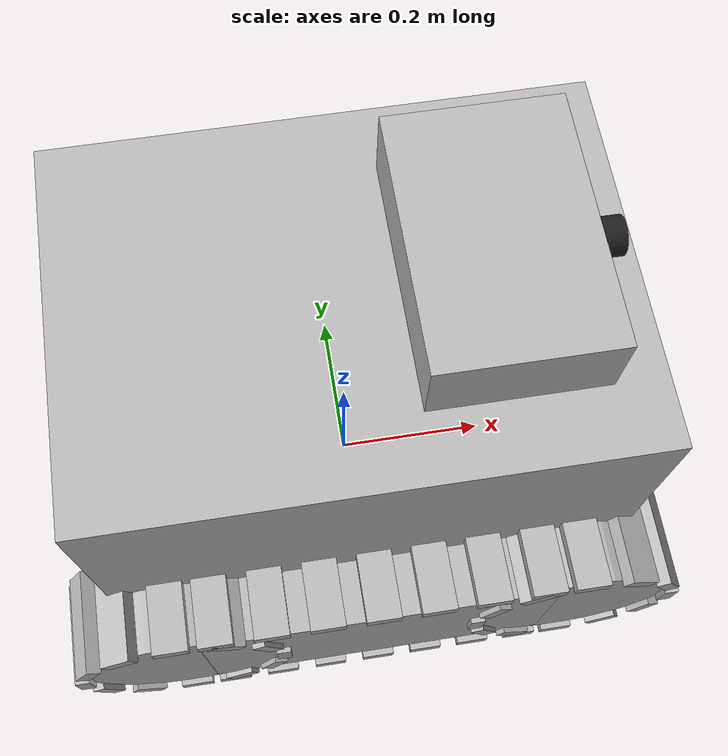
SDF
<?xml version="1.0" ?>
<sdf version="1.6">
  <model name="rover_core">

    <static>0</static>

    <include>
      <uri>model://rover_front_camera</uri>
      <pose>0.26 0 0.52 0 0 0</pose>
    </include>
    <joint name="front_camera_mount" type="fixed">
      <parent>base_link</parent>
      <child>rover_front_camera::base_link</child>
    </joint>

    <!-- ================= CHASSIS ================= -->
    <link name="base_link">
      <inertial>
        <pose>0 0 0.28 0 0 0</pose>
        <mass>54.0</mass>
        <inertia>
          <ixx>2.011</ixx>
          <ixy>0</ixy>
          <ixz>0</ixz>
          <iyy>2.754</iyy>
          <iyz>0</iyz>
          <izz>3.177</izz>
        </inertia>
      </inertial>

      <collision name="body_collision">
        <pose>0 0 0.33 0 0 0</pose>
        <geometry>
          <box>
            <size>0.66 0.58 0.30</size>
          </box>
        </geometry>
      </collision>

      <!-- lower drive housing between the tracks -->
      <visual name="housing_visual">
        <pose>0 0 0.14 0 0 0</pose>
        <geometry>
          <box>
            <size>0.58 0.36 0.12</size>
          </box>
        </geometry>
        <material>
          <script>
            <uri>model://rover_core/materials/scripts/rover.material</uri>
            <name>Rover/Housing</name>
          </script>
        </material>
      </visual>

      <!-- main upper body -->
      <visual name="body_visual">
        <pose>0 0 0.34 0 0 0</pose>
        <geometry>
          <box>
            <size>0.64 0.46 0.28</size>
          </box>
        </geometry>
        <material>
          <script>
            <uri>model://rover_core/materials/scripts/rover.material</uri>
            <name>Rover/Body</name>
          </script>
        </material>
      </visual>

      <!-- sensor head (cameras + RTK), at the front top -->
      <visual name="head_visual">
        <pose>0.16 0 0.52 0 0 0</pose>
        <geometry>
          <box>
            <size>0.20 0.30 0.10</size>
          </box>
        </geometry>
        <material>
          <script>
            <uri>model://rover_core/materials/scripts/rover.material</uri>
            <name>Rover/Head</name>
          </script>
        </material>
      </visual>

      <visual name="left_belt">
        <pose>0 0.2500 0.1200 0 0 0</pose>
        <geometry>
          <box>
            <size>0.4400 0.1120 0.2100</size>
          </box>
        </geometry>
        <material>
          <script>
            <uri>model://rover_core/materials/scripts/rover.material</uri>
            <name>Rover/Track</name>
          </script>
        </material>
      </visual>
      <visual name="left_lug_bot_00">
        <pose>-0.1979 0.2500 -0.0060 0 0 0</pose>
        <geometry>
          <box>
            <size>0.0420 0.1250 0.0180</size>
          </box>
        </geometry>
        <material>
          <script>
            <uri>model://rover_core/materials/scripts/rover.material</uri>
            <name>Rover/Lug</name>
          </script>
        </material>
      </visual>
      <visual name="left_lug_top_00">
        <pose>-0.1979 0.2500 0.2460 0 0 0</pose>
        <geometry>
          <box>
            <size>0.0420 0.1250 0.0180</size>
          </box>
        </geometry>
        <material>
          <script>
            <uri>model://rover_core/materials/scripts/rover.material</uri>
            <name>Rover/Lug</name>
          </script>
        </material>
      </visual>
      <visual name="left_lug_bot_01">
        <pose>-0.1319 0.2500 -0.0060 0 0 0</pose>
        <geometry>
          <box>
            <size>0.0420 0.1250 0.0180</size>
          </box>
        </geometry>
        <material>
          <script>
            <uri>model://rover_core/materials/scripts/rover.material</uri>
            <name>Rover/Lug</name>
          </script>
        </material>
      </visual>
      <visual name="left_lug_top_01">
        <pose>-0.1319 0.2500 0.2460 0 0 0</pose>
        <geometry>
          <box>
            <size>0.0420 0.1250 0.0180</size>
          </box>
        </geometry>
        <material>
          <script>
            <uri>model://rover_core/materials/scripts/rover.material</uri>
            <name>Rover/Lug</name>
          </script>
        </material>
      </visual>
      <visual name="left_lug_bot_02">
        <pose>-0.0660 0.2500 -0.0060 0 0 0</pose>
        <geometry>
          <box>
            <size>0.0420 0.1250 0.0180</size>
          </box>
        </geometry>
        <material>
          <script>
            <uri>model://rover_core/materials/scripts/rover.material</uri>
            <name>Rover/Lug</name>
          </script>
        </material>
      </visual>
      <visual name="left_lug_top_02">
        <pose>-0.0660 0.2500 0.2460 0 0 0</pose>
        <geometry>
          <box>
            <size>0.0420 0.1250 0.0180</size>
          </box>
        </geometry>
        <material>
          <script>
            <uri>model://rover_core/materials/scripts/rover.material</uri>
            <name>Rover/Lug</name>
          </script>
        </material>
      </visual>
      <visual name="left_lug_bot_03">
        <pose>0.0000 0.2500 -0.0060 0 0 0</pose>
        <geometry>
          <box>
            <size>0.0420 0.1250 0.0180</size>
          </box>
        </geometry>
        <material>
          <script>
            <uri>model://rover_core/materials/scripts/rover.material</uri>
            <name>Rover/Lug</name>
          </script>
        </material>
      </visual>
      <visual name="left_lug_top_03">
        <pose>0.0000 0.2500 0.2460 0 0 0</pose>
        <geometry>
          <box>
            <size>0.0420 0.1250 0.0180</size>
          </box>
        </geometry>
        <material>
          <script>
            <uri>model://rover_core/materials/scripts/rover.material</uri>
            <name>Rover/Lug</name>
          </script>
        </material>
      </visual>
      <visual name="left_lug_bot_04">
        <pose>0.0660 0.2500 -0.0060 0 0 0</pose>
        <geometry>
          <box>
            <size>0.0420 0.1250 0.0180</size>
          </box>
        </geometry>
        <material>
          <script>
            <uri>model://rover_core/materials/scripts/rover.material</uri>
            <name>Rover/Lug</name>
          </script>
        </material>
      </visual>
      <visual name="left_lug_top_04">
        <pose>0.0660 0.2500 0.2460 0 0 0</pose>
        <geometry>
          <box>
            <size>0.0420 0.1250 0.0180</size>
          </box>
        </geometry>
        <material>
          <script>
            <uri>model://rover_core/materials/scripts/rover.material</uri>
            <name>Rover/Lug</name>
          </script>
        </material>
      </visual>
      <visual name="left_lug_bot_05">
        <pose>0.1319 0.2500 -0.0060 0 0 0</pose>
        <geometry>
          <box>
            <size>0.0420 0.1250 0.0180</size>
          </box>
        </geometry>
        <material>
          <script>
            <uri>model://rover_core/materials/scripts/rover.material</uri>
            <name>Rover/Lug</name>
          </script>
        </material>
      </visual>
      <visual name="left_lug_top_05">
        <pose>0.1319 0.2500 0.2460 0 0 0</pose>
        <geometry>
          <box>
            <size>0.0420 0.1250 0.0180</size>
          </box>
        </geometry>
        <material>
          <script>
            <uri>model://rover_core/materials/scripts/rover.material</uri>
            <name>Rover/Lug</name>
          </script>
        </material>
      </visual>
      <visual name="left_lug_bot_06">
        <pose>0.1979 0.2500 -0.0060 0 0 0</pose>
        <geometry>
          <box>
            <size>0.0420 0.1250 0.0180</size>
          </box>
        </geometry>
        <material>
          <script>
            <uri>model://rover_core/materials/scripts/rover.material</uri>
            <name>Rover/Lug</name>
          </script>
        </material>
      </visual>
      <visual name="left_lug_top_06">
        <pose>0.1979 0.2500 0.2460 0 0 0</pose>
        <geometry>
          <box>
            <size>0.0420 0.1250 0.0180</size>
          </box>
        </geometry>
        <material>
          <script>
            <uri>model://rover_core/materials/scripts/rover.material</uri>
            <name>Rover/Lug</name>
          </script>
        </material>
      </visual>

      <visual name="right_belt">
        <pose>0 -0.2500 0.1200 0 0 0</pose>
        <geometry>
          <box>
            <size>0.4400 0.1120 0.2100</size>
          </box>
        </geometry>
        <material>
          <script>
            <uri>model://rover_core/materials/scripts/rover.material</uri>
            <name>Rover/Track</name>
          </script>
        </material>
      </visual>
      <visual name="right_lug_bot_00">
        <pose>-0.1979 -0.2500 -0.0060 0 0 0</pose>
        <geometry>
          <box>
            <size>0.0420 0.1250 0.0180</size>
          </box>
        </geometry>
        <material>
          <script>
            <uri>model://rover_core/materials/scripts/rover.material</uri>
            <name>Rover/Lug</name>
          </script>
        </material>
      </visual>
      <visual name="right_lug_top_00">
        <pose>-0.1979 -0.2500 0.2460 0 0 0</pose>
        <geometry>
          <box>
            <size>0.0420 0.1250 0.0180</size>
          </box>
        </geometry>
        <material>
          <script>
            <uri>model://rover_core/materials/scripts/rover.material</uri>
            <name>Rover/Lug</name>
          </script>
        </material>
      </visual>
      <visual name="right_lug_bot_01">
        <pose>-0.1319 -0.2500 -0.0060 0 0 0</pose>
        <geometry>
          <box>
            <size>0.0420 0.1250 0.0180</size>
          </box>
        </geometry>
        <material>
          <script>
            <uri>model://rover_core/materials/scripts/rover.material</uri>
            <name>Rover/Lug</name>
          </script>
        </material>
      </visual>
      <visual name="right_lug_top_01">
        <pose>-0.1319 -0.2500 0.2460 0 0 0</pose>
        <geometry>
          <box>
            <size>0.0420 0.1250 0.0180</size>
          </box>
        </geometry>
        <material>
          <script>
            <uri>model://rover_core/materials/scripts/rover.material</uri>
            <name>Rover/Lug</name>
          </script>
        </material>
      </visual>
      <visual name="right_lug_bot_02">
        <pose>-0.0660 -0.2500 -0.0060 0 0 0</pose>
        <geometry>
          <box>
            <size>0.0420 0.1250 0.0180</size>
          </box>
        </geometry>
        <material>
          <script>
            <uri>model://rover_core/materials/scripts/rover.material</uri>
            <name>Rover/Lug</name>
          </script>
        </material>
      </visual>
      <visual name="right_lug_top_02">
        <pose>-0.0660 -0.2500 0.2460 0 0 0</pose>
        <geometry>
          <box>
            <size>0.0420 0.1250 0.0180</size>
          </box>
        </geometry>
        <material>
          <script>
            <uri>model://rover_core/materials/scripts/rover.material</uri>
            <name>Rover/Lug</name>
          </script>
        </material>
      </visual>
      <visual name="right_lug_bot_03">
        <pose>0.0000 -0.2500 -0.0060 0 0 0</pose>
        <geometry>
          <box>
            <size>0.0420 0.1250 0.0180</size>
          </box>
        </geometry>
        <material>
          <script>
            <uri>model://rover_core/materials/scripts/rover.material</uri>
            <name>Rover/Lug</name>
          </script>
        </material>
      </visual>
      <visual name="right_lug_top_03">
        <pose>0.0000 -0.2500 0.2460 0 0 0</pose>
        <geometry>
          <box>
            <size>0.0420 0.1250 0.0180</size>
          </box>
        </geometry>
        <material>
          <script>
            <uri>model://rover_core/materials/scripts/rover.material</uri>
            <name>Rover/Lug</name>
          </script>
        </material>
      </visual>
      <visual name="right_lug_bot_04">
        <pose>0.0660 -0.2500 -0.0060 0 0 0</pose>
        <geometry>
          <box>
            <size>0.0420 0.1250 0.0180</size>
          </box>
        </geometry>
        <material>
          <script>
            <uri>model://rover_core/materials/scripts/rover.material</uri>
            <name>Rover/Lug</name>
          </script>
        </material>
      </visual>
      <visual name="right_lug_top_04">
        <pose>0.0660 -0.2500 0.2460 0 0 0</pose>
        <geometry>
          <box>
            <size>0.0420 0.1250 0.0180</size>
          </box>
        </geometry>
        <material>
          <script>
            <uri>model://rover_core/materials/scripts/rover.material</uri>
            <name>Rover/Lug</name>
          </script>
        </material>
      </visual>
      <visual name="right_lug_bot_05">
        <pose>0.1319 -0.2500 -0.0060 0 0 0</pose>
        <geometry>
          <box>
            <size>0.0420 0.1250 0.0180</size>
          </box>
        </geometry>
        <material>
          <script>
            <uri>model://rover_core/materials/scripts/rover.material</uri>
            <name>Rover/Lug</name>
          </script>
        </material>
      </visual>
      <visual name="right_lug_top_05">
        <pose>0.1319 -0.2500 0.2460 0 0 0</pose>
        <geometry>
          <box>
            <size>0.0420 0.1250 0.0180</size>
          </box>
        </geometry>
        <material>
          <script>
            <uri>model://rover_core/materials/scripts/rover.material</uri>
            <name>Rover/Lug</name>
          </script>
        </material>
      </visual>
      <visual name="right_lug_bot_06">
        <pose>0.1979 -0.2500 -0.0060 0 0 0</pose>
        <geometry>
          <box>
            <size>0.0420 0.1250 0.0180</size>
          </box>
        </geometry>
        <material>
          <script>
            <uri>model://rover_core/materials/scripts/rover.material</uri>
            <name>Rover/Lug</name>
          </script>
        </material>
      </visual>
      <visual name="right_lug_top_06">
        <pose>0.1979 -0.2500 0.2460 0 0 0</pose>
        <geometry>
          <box>
            <size>0.0420 0.1250 0.0180</size>
          </box>
        </geometry>
        <material>
          <script>
            <uri>model://rover_core/materials/scripts/rover.material</uri>
            <name>Rover/Lug</name>
          </script>
        </material>
      </visual>

      <sensor name="rover_imu_sensor" type="imu">
        <pose>0 0 0 3.141593 0 0</pose>
        <always_on>1</always_on>
        <update_rate>1000</update_rate>
        <imu/>
      </sensor>

      <sensor name="rover_gps_sensor" type="gps">
        <always_on>1</always_on>
        <update_rate>5</update_rate>
        <gps>
          <position_sensing>
            <horizontal>
              <noise type="gaussian">
                <mean>0</mean>
                <stddev>0.02</stddev>
              </noise>
            </horizontal>
            <vertical>
              <noise type="gaussian">
                <mean>0</mean>
                <stddev>0.05</stddev>
              </noise>
            </vertical>
          </position_sensing>
        </gps>
      </sensor>
    </link>

    <!-- LEFT FRONT -->
    <link name="lf_wheel_link">
      <pose>0.25 0.25 0.12 0 0 0</pose>
      <inertial>
        <pose>0 0 0 1.5707963 0 0</pose>
        <mass>1.7</mass>
        <inertia>
          <ixx>0.0078342</ixx>
          <ixy>0</ixy>
          <ixz>0</ixz>
          <iyy>0.0078342</iyy>
          <iyz>0</iyz>
          <izz>0.012240</izz>
        </inertia>
      </inertial>
      <collision name="collision">
        <pose>0 0 0 1.5707963 0 0</pose>
        <geometry>
          <cylinder>
            <radius>0.12</radius>
            <length>0.11</length>
          </cylinder>
        </geometry>
        <surface>
          <friction>
            <ode>
              <mu>1.1</mu>
              <mu2>1.1</mu2>
              <fdir1>1 0 0</fdir1>
            </ode>
          </friction>
          <contact>
            <ode>
              <min_depth>0.001</min_depth>
              <kp>1.0e6</kp>
              <kd>100.0</kd>
            </ode>
          </contact>
        </surface>
      </collision>
      <visual name="visual">
        <pose>0 0 0 1.5707963 0 0</pose>
        <geometry>
          <cylinder>
            <radius>0.12</radius>
            <length>0.11</length>
          </cylinder>
        </geometry>
        <material>
          <script>
            <uri>model://rover_core/materials/scripts/rover.material</uri>
            <name>Rover/Wheel</name>
          </script>
        </material>
      </visual>
      <visual name="lug_00">
        <pose>0.1260 0 0.0000 0 1.57080 0</pose>
        <geometry>
          <box>
            <size>0.0420 0.1250 0.0180</size>
          </box>
        </geometry>
        <material>
          <script>
            <uri>model://rover_core/materials/scripts/rover.material</uri>
            <name>Rover/Lug</name>
          </script>
        </material>
      </visual>
      <visual name="lug_01">
        <pose>0.1091 0 0.0630 0 1.04720 0</pose>
        <geometry>
          <box>
            <size>0.0420 0.1250 0.0180</size>
          </box>
        </geometry>
        <material>
          <script>
            <uri>model://rover_core/materials/scripts/rover.material</uri>
            <name>Rover/Lug</name>
          </script>
        </material>
      </visual>
      <visual name="lug_02">
        <pose>0.0630 0 0.1091 0 0.52360 0</pose>
        <geometry>
          <box>
            <size>0.0420 0.1250 0.0180</size>
          </box>
        </geometry>
        <material>
          <script>
            <uri>model://rover_core/materials/scripts/rover.material</uri>
            <name>Rover/Lug</name>
          </script>
        </material>
      </visual>
      <visual name="lug_03">
        <pose>0.0000 0 0.1260 0 0.00000 0</pose>
        <geometry>
          <box>
            <size>0.0420 0.1250 0.0180</size>
          </box>
        </geometry>
        <material>
          <script>
            <uri>model://rover_core/materials/scripts/rover.material</uri>
            <name>Rover/Lug</name>
          </script>
        </material>
      </visual>
      <visual name="lug_04">
        <pose>-0.0630 0 0.1091 0 -0.52360 0</pose>
        <geometry>
          <box>
            <size>0.0420 0.1250 0.0180</size>
          </box>
        </geometry>
        <material>
          <script>
            <uri>model://rover_core/materials/scripts/rover.material</uri>
            <name>Rover/Lug</name>
          </script>
        </material>
      </visual>
      <visual name="lug_05">
        <pose>-0.1091 0 0.0630 0 -1.04720 0</pose>
        <geometry>
          <box>
            <size>0.0420 0.1250 0.0180</size>
          </box>
        </geometry>
        <material>
          <script>
            <uri>model://rover_core/materials/scripts/rover.material</uri>
            <name>Rover/Lug</name>
          </script>
        </material>
      </visual>
      <visual name="lug_06">
        <pose>-0.1260 0 0.0000 0 -1.57080 0</pose>
        <geometry>
          <box>
            <size>0.0420 0.1250 0.0180</size>
          </box>
        </geometry>
        <material>
          <script>
            <uri>model://rover_core/materials/scripts/rover.material</uri>
            <name>Rover/Lug</name>
          </script>
        </material>
      </visual>
      <visual name="lug_07">
        <pose>-0.1091 0 -0.0630 0 -2.09440 0</pose>
        <geometry>
          <box>
            <size>0.0420 0.1250 0.0180</size>
          </box>
        </geometry>
        <material>
          <script>
            <uri>model://rover_core/materials/scripts/rover.material</uri>
            <name>Rover/Lug</name>
          </script>
        </material>
      </visual>
      <visual name="lug_08">
        <pose>-0.0630 0 -0.1091 0 -2.61799 0</pose>
        <geometry>
          <box>
            <size>0.0420 0.1250 0.0180</size>
          </box>
        </geometry>
        <material>
          <script>
            <uri>model://rover_core/materials/scripts/rover.material</uri>
            <name>Rover/Lug</name>
          </script>
        </material>
      </visual>
      <visual name="lug_09">
        <pose>-0.0000 0 -0.1260 0 -3.14159 0</pose>
        <geometry>
          <box>
            <size>0.0420 0.1250 0.0180</size>
          </box>
        </geometry>
        <material>
          <script>
            <uri>model://rover_core/materials/scripts/rover.material</uri>
            <name>Rover/Lug</name>
          </script>
        </material>
      </visual>
      <visual name="lug_10">
        <pose>0.0630 0 -0.1091 0 -3.66519 0</pose>
        <geometry>
          <box>
            <size>0.0420 0.1250 0.0180</size>
          </box>
        </geometry>
        <material>
          <script>
            <uri>model://rover_core/materials/scripts/rover.material</uri>
            <name>Rover/Lug</name>
          </script>
        </material>
      </visual>
      <visual name="lug_11">
        <pose>0.1091 0 -0.0630 0 -4.18879 0</pose>
        <geometry>
          <box>
            <size>0.0420 0.1250 0.0180</size>
          </box>
        </geometry>
        <material>
          <script>
            <uri>model://rover_core/materials/scripts/rover.material</uri>
            <name>Rover/Lug</name>
          </script>
        </material>
      </visual>
    </link>
    <joint name="motor_0" type="revolute">
      <parent>base_link</parent>
      <child>lf_wheel_link</child>
      <axis>
        <xyz>0 1 0</xyz>
        <limit>
          <lower>-1e16</lower>
          <upper>1e16</upper>
        </limit>
        <dynamics>
          <damping>0.0005</damping>
        </dynamics>
      </axis>
    </joint>

    <!-- LEFT BACK -->
    <link name="lb_wheel_link">
      <pose>-0.25 0.25 0.12 0 0 0</pose>
      <inertial>
        <pose>0 0 0 1.5707963 0 0</pose>
        <mass>1.7</mass>
        <inertia>
          <ixx>0.0078342</ixx>
          <ixy>0</ixy>
          <ixz>0</ixz>
          <iyy>0.0078342</iyy>
          <iyz>0</iyz>
          <izz>0.012240</izz>
        </inertia>
      </inertial>
      <collision name="collision">
        <pose>0 0 0 1.5707963 0 0</pose>
        <geometry>
          <cylinder>
            <radius>0.12</radius>
            <length>0.11</length>
          </cylinder>
        </geometry>
        <surface>
          <friction>
            <ode>
              <mu>1.1</mu>
              <mu2>1.1</mu2>
              <fdir1>1 0 0</fdir1>
            </ode>
          </friction>
          <contact>
            <ode>
              <min_depth>0.001</min_depth>
              <kp>1.0e6</kp>
              <kd>100.0</kd>
            </ode>
          </contact>
        </surface>
      </collision>
      <visual name="visual">
        <pose>0 0 0 1.5707963 0 0</pose>
        <geometry>
          <cylinder>
            <radius>0.12</radius>
            <length>0.11</length>
          </cylinder>
        </geometry>
        <material>
          <script>
            <uri>model://rover_core/materials/scripts/rover.material</uri>
            <name>Rover/Wheel</name>
          </script>
        </material>
      </visual>
      <visual name="lug_00">
        <pose>0.1260 0 0.0000 0 1.57080 0</pose>
        <geometry>
          <box>
            <size>0.0420 0.1250 0.0180</size>
          </box>
        </geometry>
        <material>
          <script>
            <uri>model://rover_core/materials/scripts/rover.material</uri>
            <name>Rover/Lug</name>
          </script>
        </material>
      </visual>
      <visual name="lug_01">
        <pose>0.1091 0 0.0630 0 1.04720 0</pose>
        <geometry>
          <box>
            <size>0.0420 0.1250 0.0180</size>
          </box>
        </geometry>
        <material>
          <script>
            <uri>model://rover_core/materials/scripts/rover.material</uri>
            <name>Rover/Lug</name>
          </script>
        </material>
      </visual>
      <visual name="lug_02">
        <pose>0.0630 0 0.1091 0 0.52360 0</pose>
        <geometry>
          <box>
            <size>0.0420 0.1250 0.0180</size>
          </box>
        </geometry>
        <material>
          <script>
            <uri>model://rover_core/materials/scripts/rover.material</uri>
            <name>Rover/Lug</name>
          </script>
        </material>
      </visual>
      <visual name="lug_03">
        <pose>0.0000 0 0.1260 0 0.00000 0</pose>
        <geometry>
          <box>
            <size>0.0420 0.1250 0.0180</size>
          </box>
        </geometry>
        <material>
          <script>
            <uri>model://rover_core/materials/scripts/rover.material</uri>
            <name>Rover/Lug</name>
          </script>
        </material>
      </visual>
      <visual name="lug_04">
        <pose>-0.0630 0 0.1091 0 -0.52360 0</pose>
        <geometry>
          <box>
            <size>0.0420 0.1250 0.0180</size>
          </box>
        </geometry>
        <material>
          <script>
            <uri>model://rover_core/materials/scripts/rover.material</uri>
            <name>Rover/Lug</name>
          </script>
        </material>
      </visual>
      <visual name="lug_05">
        <pose>-0.1091 0 0.0630 0 -1.04720 0</pose>
        <geometry>
          <box>
            <size>0.0420 0.1250 0.0180</size>
          </box>
        </geometry>
        <material>
          <script>
            <uri>model://rover_core/materials/scripts/rover.material</uri>
            <name>Rover/Lug</name>
          </script>
        </material>
      </visual>
      <visual name="lug_06">
        <pose>-0.1260 0 0.0000 0 -1.57080 0</pose>
        <geometry>
          <box>
            <size>0.0420 0.1250 0.0180</size>
          </box>
        </geometry>
        <material>
          <script>
            <uri>model://rover_core/materials/scripts/rover.material</uri>
            <name>Rover/Lug</name>
          </script>
        </material>
      </visual>
      <visual name="lug_07">
        <pose>-0.1091 0 -0.0630 0 -2.09440 0</pose>
        <geometry>
          <box>
            <size>0.0420 0.1250 0.0180</size>
          </box>
        </geometry>
        <material>
          <script>
            <uri>model://rover_core/materials/scripts/rover.material</uri>
            <name>Rover/Lug</name>
          </script>
        </material>
      </visual>
      <visual name="lug_08">
        <pose>-0.0630 0 -0.1091 0 -2.61799 0</pose>
        <geometry>
          <box>
            <size>0.0420 0.1250 0.0180</size>
          </box>
        </geometry>
        <material>
          <script>
            <uri>model://rover_core/materials/scripts/rover.material</uri>
            <name>Rover/Lug</name>
          </script>
        </material>
      </visual>
      <visual name="lug_09">
        <pose>-0.0000 0 -0.1260 0 -3.14159 0</pose>
        <geometry>
          <box>
            <size>0.0420 0.1250 0.0180</size>
          </box>
        </geometry>
        <material>
          <script>
            <uri>model://rover_core/materials/scripts/rover.material</uri>
            <name>Rover/Lug</name>
          </script>
        </material>
      </visual>
      <visual name="lug_10">
        <pose>0.0630 0 -0.1091 0 -3.66519 0</pose>
        <geometry>
          <box>
            <size>0.0420 0.1250 0.0180</size>
          </box>
        </geometry>
        <material>
          <script>
            <uri>model://rover_core/materials/scripts/rover.material</uri>
            <name>Rover/Lug</name>
          </script>
        </material>
      </visual>
      <visual name="lug_11">
        <pose>0.1091 0 -0.0630 0 -4.18879 0</pose>
        <geometry>
          <box>
            <size>0.0420 0.1250 0.0180</size>
          </box>
        </geometry>
        <material>
          <script>
            <uri>model://rover_core/materials/scripts/rover.material</uri>
            <name>Rover/Lug</name>
          </script>
        </material>
      </visual>
    </link>
    <joint name="motor_1" type="revolute">
      <parent>base_link</parent>
      <child>lb_wheel_link</child>
      <axis>
        <xyz>0 1 0</xyz>
        <limit>
          <lower>-1e16</lower>
          <upper>1e16</upper>
        </limit>
        <dynamics>
          <damping>0.0005</damping>
        </dynamics>
      </axis>
    </joint>

    <!-- RIGHT FRONT (axis mirrored) -->
    <link name="rf_wheel_link">
      <pose>0.25 -0.25 0.12 0 0 0</pose>
      <inertial>
        <pose>0 0 0 1.5707963 0 0</pose>
        <mass>1.7</mass>
        <inertia>
          <ixx>0.0078342</ixx>
          <ixy>0</ixy>
          <ixz>0</ixz>
          <iyy>0.0078342</iyy>
          <iyz>0</iyz>
          <izz>0.012240</izz>
        </inertia>
      </inertial>
      <collision name="collision">
        <pose>0 0 0 1.5707963 0 0</pose>
        <geometry>
          <cylinder>
            <radius>0.12</radius>
            <length>0.11</length>
          </cylinder>
        </geometry>
        <surface>
          <friction>
            <ode>
              <mu>1.1</mu>
              <mu2>1.1</mu2>
              <fdir1>1 0 0</fdir1>
            </ode>
          </friction>
          <contact>
            <ode>
              <min_depth>0.001</min_depth>
              <kp>1.0e6</kp>
              <kd>100.0</kd>
            </ode>
          </contact>
        </surface>
      </collision>
      <visual name="visual">
        <pose>0 0 0 1.5707963 0 0</pose>
        <geometry>
          <cylinder>
            <radius>0.12</radius>
            <length>0.11</length>
          </cylinder>
        </geometry>
        <material>
          <script>
            <uri>model://rover_core/materials/scripts/rover.material</uri>
            <name>Rover/Wheel</name>
          </script>
        </material>
      </visual>
      <visual name="lug_00">
        <pose>0.1260 0 0.0000 0 1.57080 0</pose>
        <geometry>
          <box>
            <size>0.0420 0.1250 0.0180</size>
          </box>
        </geometry>
        <material>
          <script>
            <uri>model://rover_core/materials/scripts/rover.material</uri>
            <name>Rover/Lug</name>
          </script>
        </material>
      </visual>
      <visual name="lug_01">
        <pose>0.1091 0 0.0630 0 1.04720 0</pose>
        <geometry>
          <box>
            <size>0.0420 0.1250 0.0180</size>
          </box>
        </geometry>
        <material>
          <script>
            <uri>model://rover_core/materials/scripts/rover.material</uri>
            <name>Rover/Lug</name>
          </script>
        </material>
      </visual>
      <visual name="lug_02">
        <pose>0.0630 0 0.1091 0 0.52360 0</pose>
        <geometry>
          <box>
            <size>0.0420 0.1250 0.0180</size>
          </box>
        </geometry>
        <material>
          <script>
            <uri>model://rover_core/materials/scripts/rover.material</uri>
            <name>Rover/Lug</name>
          </script>
        </material>
      </visual>
      <visual name="lug_03">
        <pose>0.0000 0 0.1260 0 0.00000 0</pose>
        <geometry>
          <box>
            <size>0.0420 0.1250 0.0180</size>
          </box>
        </geometry>
        <material>
          <script>
            <uri>model://rover_core/materials/scripts/rover.material</uri>
            <name>Rover/Lug</name>
          </script>
        </material>
      </visual>
      <visual name="lug_04">
        <pose>-0.0630 0 0.1091 0 -0.52360 0</pose>
        <geometry>
          <box>
            <size>0.0420 0.1250 0.0180</size>
          </box>
        </geometry>
        <material>
          <script>
            <uri>model://rover_core/materials/scripts/rover.material</uri>
            <name>Rover/Lug</name>
          </script>
        </material>
      </visual>
      <visual name="lug_05">
        <pose>-0.1091 0 0.0630 0 -1.04720 0</pose>
        <geometry>
          <box>
            <size>0.0420 0.1250 0.0180</size>
          </box>
        </geometry>
        <material>
          <script>
            <uri>model://rover_core/materials/scripts/rover.material</uri>
            <name>Rover/Lug</name>
          </script>
        </material>
      </visual>
      <visual name="lug_06">
        <pose>-0.1260 0 0.0000 0 -1.57080 0</pose>
        <geometry>
          <box>
            <size>0.0420 0.1250 0.0180</size>
          </box>
        </geometry>
        <material>
          <script>
            <uri>model://rover_core/materials/scripts/rover.material</uri>
            <name>Rover/Lug</name>
          </script>
        </material>
      </visual>
      <visual name="lug_07">
        <pose>-0.1091 0 -0.0630 0 -2.09440 0</pose>
        <geometry>
          <box>
            <size>0.0420 0.1250 0.0180</size>
          </box>
        </geometry>
        <material>
          <script>
            <uri>model://rover_core/materials/scripts/rover.material</uri>
            <name>Rover/Lug</name>
          </script>
        </material>
      </visual>
      <visual name="lug_08">
        <pose>-0.0630 0 -0.1091 0 -2.61799 0</pose>
        <geometry>
          <box>
            <size>0.0420 0.1250 0.0180</size>
          </box>
        </geometry>
        <material>
          <script>
            <uri>model://rover_core/materials/scripts/rover.material</uri>
            <name>Rover/Lug</name>
          </script>
        </material>
      </visual>
      <visual name="lug_09">
        <pose>-0.0000 0 -0.1260 0 -3.14159 0</pose>
        <geometry>
          <box>
            <size>0.0420 0.1250 0.0180</size>
          </box>
        </geometry>
        <material>
          <script>
            <uri>model://rover_core/materials/scripts/rover.material</uri>
            <name>Rover/Lug</name>
          </script>
        </material>
      </visual>
      <visual name="lug_10">
        <pose>0.0630 0 -0.1091 0 -3.66519 0</pose>
        <geometry>
          <box>
            <size>0.0420 0.1250 0.0180</size>
          </box>
        </geometry>
        <material>
          <script>
            <uri>model://rover_core/materials/scripts/rover.material</uri>
            <name>Rover/Lug</name>
          </script>
        </material>
      </visual>
      <visual name="lug_11">
        <pose>0.1091 0 -0.0630 0 -4.18879 0</pose>
        <geometry>
          <box>
            <size>0.0420 0.1250 0.0180</size>
          </box>
        </geometry>
        <material>
          <script>
            <uri>model://rover_core/materials/scripts/rover.material</uri>
            <name>Rover/Lug</name>
          </script>
        </material>
      </visual>
    </link>
    <joint name="motor_2" type="revolute">
      <parent>base_link</parent>
      <child>rf_wheel_link</child>
      <axis>
        <xyz>0 -1 0</xyz>
        <limit>
          <lower>-1e16</lower>
          <upper>1e16</upper>
        </limit>
        <dynamics>
          <damping>0.0005</damping>
        </dynamics>
      </axis>
    </joint>

    <!-- RIGHT BACK (axis mirrored) -->
    <link name="rb_wheel_link">
      <pose>-0.25 -0.25 0.12 0 0 0</pose>
      <inertial>
        <pose>0 0 0 1.5707963 0 0</pose>
        <mass>1.7</mass>
        <inertia>
          <ixx>0.0078342</ixx>
          <ixy>0</ixy>
          <ixz>0</ixz>
          <iyy>0.0078342</iyy>
          <iyz>0</iyz>
          <izz>0.012240</izz>
        </inertia>
      </inertial>
      <collision name="collision">
        <pose>0 0 0 1.5707963 0 0</pose>
        <geometry>
          <cylinder>
            <radius>0.12</radius>
            <length>0.11</length>
          </cylinder>
        </geometry>
        <surface>
          <friction>
            <ode>
              <mu>1.1</mu>
              <mu2>1.1</mu2>
              <fdir1>1 0 0</fdir1>
            </ode>
          </friction>
          <contact>
            <ode>
              <min_depth>0.001</min_depth>
              <kp>1.0e6</kp>
              <kd>100.0</kd>
            </ode>
          </contact>
        </surface>
      </collision>
      <visual name="visual">
        <pose>0 0 0 1.5707963 0 0</pose>
        <geometry>
          <cylinder>
            <radius>0.12</radius>
            <length>0.11</length>
          </cylinder>
        </geometry>
        <material>
          <script>
            <uri>model://rover_core/materials/scripts/rover.material</uri>
            <name>Rover/Wheel</name>
          </script>
        </material>
      </visual>
      <visual name="lug_00">
        <pose>0.1260 0 0.0000 0 1.57080 0</pose>
        <geometry>
          <box>
            <size>0.0420 0.1250 0.0180</size>
          </box>
        </geometry>
        <material>
          <script>
            <uri>model://rover_core/materials/scripts/rover.material</uri>
            <name>Rover/Lug</name>
          </script>
        </material>
      </visual>
      <visual name="lug_01">
        <pose>0.1091 0 0.0630 0 1.04720 0</pose>
        <geometry>
          <box>
            <size>0.0420 0.1250 0.0180</size>
          </box>
        </geometry>
        <material>
          <script>
            <uri>model://rover_core/materials/scripts/rover.material</uri>
            <name>Rover/Lug</name>
          </script>
        </material>
      </visual>
      <visual name="lug_02">
        <pose>0.0630 0 0.1091 0 0.52360 0</pose>
        <geometry>
          <box>
            <size>0.0420 0.1250 0.0180</size>
          </box>
        </geometry>
        <material>
          <script>
            <uri>model://rover_core/materials/scripts/rover.material</uri>
            <name>Rover/Lug</name>
          </script>
        </material>
      </visual>
      <visual name="lug_03">
        <pose>0.0000 0 0.1260 0 0.00000 0</pose>
        <geometry>
          <box>
            <size>0.0420 0.1250 0.0180</size>
          </box>
        </geometry>
        <material>
          <script>
            <uri>model://rover_core/materials/scripts/rover.material</uri>
            <name>Rover/Lug</name>
          </script>
        </material>
      </visual>
      <visual name="lug_04">
        <pose>-0.0630 0 0.1091 0 -0.52360 0</pose>
        <geometry>
          <box>
            <size>0.0420 0.1250 0.0180</size>
          </box>
        </geometry>
        <material>
          <script>
            <uri>model://rover_core/materials/scripts/rover.material</uri>
            <name>Rover/Lug</name>
          </script>
        </material>
      </visual>
      <visual name="lug_05">
        <pose>-0.1091 0 0.0630 0 -1.04720 0</pose>
        <geometry>
          <box>
            <size>0.0420 0.1250 0.0180</size>
          </box>
        </geometry>
        <material>
          <script>
            <uri>model://rover_core/materials/scripts/rover.material</uri>
            <name>Rover/Lug</name>
          </script>
        </material>
      </visual>
      <visual name="lug_06">
        <pose>-0.1260 0 0.0000 0 -1.57080 0</pose>
        <geometry>
          <box>
            <size>0.0420 0.1250 0.0180</size>
          </box>
        </geometry>
        <material>
          <script>
            <uri>model://rover_core/materials/scripts/rover.material</uri>
            <name>Rover/Lug</name>
          </script>
        </material>
      </visual>
      <visual name="lug_07">
        <pose>-0.1091 0 -0.0630 0 -2.09440 0</pose>
        <geometry>
          <box>
            <size>0.0420 0.1250 0.0180</size>
          </box>
        </geometry>
        <material>
          <script>
            <uri>model://rover_core/materials/scripts/rover.material</uri>
            <name>Rover/Lug</name>
          </script>
        </material>
      </visual>
      <visual name="lug_08">
        <pose>-0.0630 0 -0.1091 0 -2.61799 0</pose>
        <geometry>
          <box>
            <size>0.0420 0.1250 0.0180</size>
          </box>
        </geometry>
        <material>
          <script>
            <uri>model://rover_core/materials/scripts/rover.material</uri>
            <name>Rover/Lug</name>
          </script>
        </material>
      </visual>
      <visual name="lug_09">
        <pose>-0.0000 0 -0.1260 0 -3.14159 0</pose>
        <geometry>
          <box>
            <size>0.0420 0.1250 0.0180</size>
          </box>
        </geometry>
        <material>
          <script>
            <uri>model://rover_core/materials/scripts/rover.material</uri>
            <name>Rover/Lug</name>
          </script>
        </material>
      </visual>
      <visual name="lug_10">
        <pose>0.0630 0 -0.1091 0 -3.66519 0</pose>
        <geometry>
          <box>
            <size>0.0420 0.1250 0.0180</size>
          </box>
        </geometry>
        <material>
          <script>
            <uri>model://rover_core/materials/scripts/rover.material</uri>
            <name>Rover/Lug</name>
          </script>
        </material>
      </visual>
      <visual name="lug_11">
        <pose>0.1091 0 -0.0630 0 -4.18879 0</pose>
        <geometry>
          <box>
            <size>0.0420 0.1250 0.0180</size>
          </box>
        </geometry>
        <material>
          <script>
            <uri>model://rover_core/materials/scripts/rover.material</uri>
            <name>Rover/Lug</name>
          </script>
        </material>
      </visual>
    </link>
    <joint name="motor_3" type="revolute">
      <parent>base_link</parent>
      <child>rb_wheel_link</child>
      <axis>
        <xyz>0 -1 0</xyz>
        <limit>
          <lower>-1e16</lower>
          <upper>1e16</upper>
        </limit>
        <dynamics>
          <damping>0.0005</damping>
        </dynamics>
      </axis>
    </joint>

    <plugin name="ardupilot_plugin" filename="libArduPilotPlugin.so">
      <worldFrame>ENU</worldFrame>

      <!-- Machine running Gazebo -->
      <listen_addr>10.23.0.5</listen_addr>
      <fdm_port_in>9052</fdm_port_in>

      <!-- Machine running SITL -->
      <fdm_addr>10.23.0.105</fdm_addr>
      <fdm_port_out>9053</fdm_port_out>

      <connectionTimeoutMaxCount>5</connectionTimeoutMaxCount>
      <lock_step>1</lock_step>
      <modelXYZToAirplaneXForwardZDown>0 0 0 3.141593 0 0</modelXYZToAirplaneXForwardZDown>
      <imuName>rover_imu_sensor</imuName>

      <control channel="0">
        <type>VELOCITY</type>
        <jointName>motor_0</jointName>
        <useForce>1</useForce>
        <multiplier>10.0</multiplier>
        <offset>-0.5</offset>
        <p_gain>2.5</p_gain>
        <i_gain>1.5</i_gain>
        <d_gain>0.0</d_gain>
        <i_max>25</i_max>
        <i_min>-25</i_min>
        <cmd_max>50</cmd_max>
        <cmd_min>-50</cmd_min>
      </control>
      <control channel="0">
        <type>VELOCITY</type>
        <jointName>motor_1</jointName>
        <useForce>1</useForce>
        <multiplier>10.0</multiplier>
        <offset>-0.5</offset>
        <p_gain>2.5</p_gain>
        <i_gain>1.5</i_gain>
        <d_gain>0.0</d_gain>
        <i_max>25</i_max>
        <i_min>-25</i_min>
        <cmd_max>50</cmd_max>
        <cmd_min>-50</cmd_min>
      </control>

      <!-- multiplier negated: these joints' axes are mirrored (0 -1 0). If a
           forward command pivots the rover instead of driving it, flip the sign
           on one side. -->
      <control channel="2">
        <type>VELOCITY</type>
        <jointName>motor_2</jointName>
        <useForce>1</useForce>
        <multiplier>-10.0</multiplier>
        <offset>-0.5</offset>
        <p_gain>2.5</p_gain>
        <i_gain>1.5</i_gain>
        <d_gain>0.0</d_gain>
        <i_max>25</i_max>
        <i_min>-25</i_min>
        <cmd_max>50</cmd_max>
        <cmd_min>-50</cmd_min>
      </control>
      <control channel="2">
        <type>VELOCITY</type>
        <jointName>motor_3</jointName>
        <useForce>1</useForce>
        <multiplier>-10.0</multiplier>
        <offset>-0.5</offset>
        <p_gain>2.5</p_gain>
        <i_gain>1.5</i_gain>
        <d_gain>0.0</d_gain>
        <i_max>25</i_max>
        <i_min>-25</i_min>
        <cmd_max>50</cmd_max>
        <cmd_min>-50</cmd_min>
      </control>
    </plugin>

  </model>
</sdf>

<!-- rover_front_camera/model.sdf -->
<sdf version="1.6">
  <model name="rover_front_camera">

    <link name="base_link">
      <inertial>
        <mass>0.3</mass>
        <inertia>
          <ixx>0.0004</ixx>
          <ixy>0</ixy>
          <ixz>0</ixz>
          <iyy>0.0004</iyy>
          <iyz>0</iyz>
          <izz>0.0004</izz>
        </inertia>
      </inertial>

      <visual name="lens_visual">
        <pose>0.02 0 0 0 1.5707963 0</pose>
        <geometry>
          <cylinder>
            <radius>0.022</radius>
            <length>0.03</length>
          </cylinder>
        </geometry>
        <material>
          <script>
            <uri>file://media/materials/scripts/gazebo.material</uri>
            <name>Gazebo/FlatBlack</name>
          </script>
        </material>
      </visual>

      <sensor name="front_camera" type="camera">
        <always_on>1</always_on>
        <update_rate>10</update_rate>
        <visualize>true</visualize>
        <camera name="front">
          <!-- 1.5 rad ~= 86 deg, the upstream model's value. -->
          <horizontal_fov>1.5</horizontal_fov>
          <image>
            <width>960</width>
            <height>720</height>
            <format>R8G8B8</format>
          </image>
          <clip>
            <near>0.05</near>
            <far>1500</far>
          </clip>
        </camera>
        <plugin name="camera_stream" filename="libCameraStreamPlugin.so">
          <port>8650</port>
          <label>rover front</label>
          <quality>70</quality>
          <shrink>1</shrink>
          <sleep_when_idle>0</sleep_when_idle>
        </plugin>
      </sensor>
    </link>

  </model>
</sdf>
